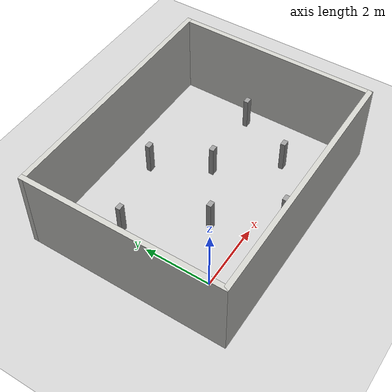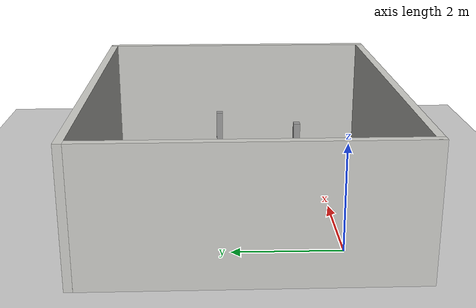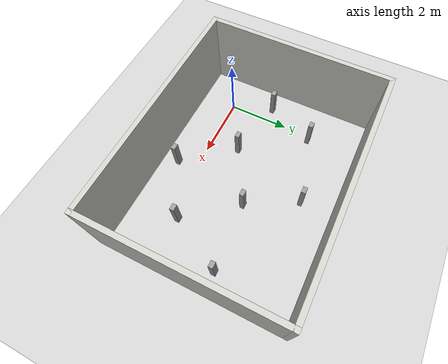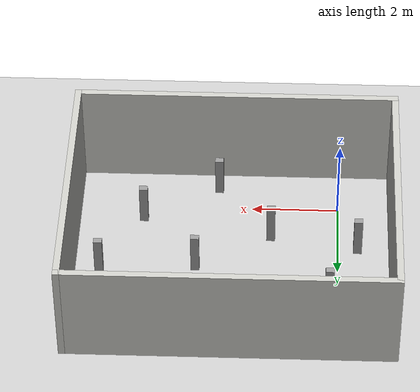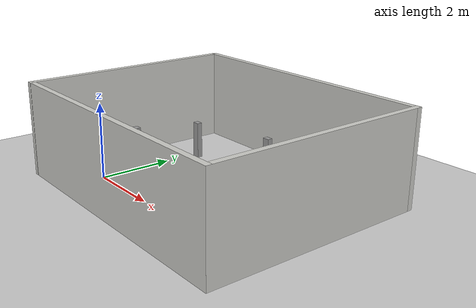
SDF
<sdf version="1.6">
 <world name="default">
  <light name="sun" type="directional">
   <pose>0 0 10 0 -0 0</pose>
   <diffuse>0.8 0.8 0.8 1</diffuse>
   <specular>0.2 0.2 0.2 1</specular>
   <attenuation>
    <range>1000</range>
    <constant>0.9</constant>
    <linear>0.01</linear>
    <quadratic>0.001</quadratic>
   </attenuation>
   <direction>-0.5 0.1 -0.9</direction>
  </light>
  <model name="ground_plane">
   <static>1</static>
   <link name="link">
    <collision name="collision">
     <geometry><plane><normal>0 0 1</normal><size>100 100</size></plane></geometry>
     <surface>
      <contact><collide_bitmask>65535</collide_bitmask></contact>
      <friction><ode><mu>100</mu><mu2>50</mu2></ode></friction>
     </surface>
    </collision>
    <visual name="visual">
     <cast_shadows>0</cast_shadows>
     <geometry><plane><normal>0 0 1</normal><size>100 100</size></plane></geometry>
     <material>
      <script><uri>file://media/materials/scripts/gazebo.material</uri><name>Gazebo/Grey</name></script>
     </material>
    </visual>
   </link>
  </model>
  <gravity>0 0 -9.8</gravity>
  <magnetic_field>6e-06 2.3e-05 -4.2e-05</magnetic_field>
  <atmosphere type="adiabatic"/>
  <physics name="default_physics" default="0" type="ode">
   <max_step_size>0.001</max_step_size>
   <real_time_factor>1</real_time_factor>
   <real_time_update_rate>1000</real_time_update_rate>
  </physics>
  <scene><ambient>0.4 0.4 0.4 1</ambient><background>0.7 0.7 0.7 1</background><shadows>1</shadows></scene>
  <spherical_coordinates>
   <surface_model>EARTH_WGS84</surface_model>
   <latitude_deg>0</latitude_deg>
   <longitude_deg>0</longitude_deg>
   <elevation>0</elevation>
   <heading_deg>0</heading_deg>
  </spherical_coordinates>
  <model name="house">
   <pose>2.42215 1.70527 0 0 -0 0</pose>
   <link name="Wall_0">
    <collision name="Wall_0_Collision">
     <geometry><box><size>6 0.15 2.5</size></box></geometry>
     <pose>0 0 1.25 0 -0 0</pose>
    </collision>
    <visual name="Wall_0_Visual">
     <pose>0 0 1.25 0 -0 0</pose>
     <geometry><box><size>6 0.15 2.5</size></box></geometry>
     <material>
      <script><uri>file://media/materials/scripts/gazebo.material</uri><name>Gazebo/CeilingTiled</name></script>
      <ambient>0.760784 0.662745 0.627451 1</ambient>
     </material>
     <meta><layer>0</layer></meta>
    </visual>
    <pose>-3.675 0 0 0 0 -1.5708</pose>
   </link>
   <link name="Wall_1">
    <collision name="Wall_1_Collision">
     <geometry><box><size>7.5 0.15 2.5</size></box></geometry>
     <pose>0 0 1.25 0 -0 0</pose>
    </collision>
    <visual name="Wall_1_Visual">
     <pose>0 0 1.25 0 -0 0</pose>
     <geometry><box><size>7.5 0.15 2.5</size></box></geometry>
     <material>
      <script><uri>file://media/materials/scripts/gazebo.material</uri><name>Gazebo/CeilingTiled</name></script>
      <ambient>0.996078 0.47451 0.0196078 1</ambient>
     </material>
     <meta><layer>0</layer></meta>
    </visual>
    <pose>0 -2.925 0 0 -0 0</pose>
   </link>
   <link name="Wall_2">
    <collision name="Wall_2_Collision">
     <geometry><box><size>6 0.15 2.5</size></box></geometry>
     <pose>0 0 1.25 0 -0 0</pose>
    </collision>
    <visual name="Wall_2_Visual">
     <pose>0 0 1.25 0 -0 0</pose>
     <geometry><box><size>6 0.15 2.5</size></box></geometry>
     <material>
      <script><uri>file://media/materials/scripts/gazebo.material</uri><name>Gazebo/CeilingTiled</name></script>
      <ambient>0.435294 0.796078 0.67451 1</ambient>
     </material>
     <meta><layer>0</layer></meta>
    </visual>
    <pose>3.675 0 0 0 -0 1.5708</pose>
   </link>
   <link name="Wall_3">
    <collision name="Wall_3_Collision">
     <geometry><box><size>7.5 0.15 2.5</size></box></geometry>
     <pose>0 0 1.25 0 -0 0</pose>
    </collision>
    <visual name="Wall_3_Visual">
     <pose>0 0 1.25 0 -0 0</pose>
     <geometry><box><size>7.5 0.15 2.5</size></box></geometry>
     <material>
      <script><uri>file://media/materials/scripts/gazebo.material</uri><name>Gazebo/CeilingTiled</name></script>
      <ambient>1 0.764706 0.305882 1</ambient>
     </material>
     <meta><layer>0</layer></meta>
    </visual>
    <pose>0 2.925 0 0 -0 3.14159</pose>
   </link>
   <static>1</static>
  </model>
  <model name="unit_box">
   <pose>1.55376 0.965848 0.5 0 -0 7.6e-05</pose>
   <link name="link">
    <inertial>
     <mass>1</mass>
     <inertia>
      <ixx>0.166667</ixx>
      <ixy>0</ixy>
      <ixz>0</ixz>
      <iyy>0.166667</iyy>
      <iyz>0</iyz>
      <izz>0.166667</izz>
     </inertia>
    </inertial>
    <collision name="collision"><geometry><box><size>0.197071 0.142039 1</size></box></geometry></collision>
    <visual name="visual">
     <geometry><box><size>0.197071 0.142039 1</size></box></geometry>
     <material>
      <script><name>Gazebo/Grey</name><uri>file://media/materials/scripts/gazebo.material</uri></script>
     </material>
    </visual>
   </link>
  </model>
  <model name="unit_box_clone">
   <pose>3.26865 1.97333 0.5 1e-06 3e-06 0.000106</pose>
   <link name="link">
    <inertial>
     <mass>1</mass>
     <inertia>
      <ixx>0.166667</ixx>
      <ixy>0</ixy>
      <ixz>0</ixz>
      <iyy>0.166667</iyy>
      <iyz>0</iyz>
      <izz>0.166667</izz>
     </inertia>
    </inertial>
    <collision name="collision"><geometry><box><size>0.197071 0.142039 1</size></box></geometry></collision>
    <visual name="visual">
     <geometry><box><size>0.197071 0.142039 1</size></box></geometry>
     <material>
      <script><name>Gazebo/Grey</name><uri>file://media/materials/scripts/gazebo.material</uri></script>
     </material>
    </visual>
   </link>
  </model>
  <model name="unit_box_clone_0">
   <pose>4.52711 0.399952 0.5 -1e-06 2e-06 1.7e-05</pose>
   <link name="link">
    <inertial>
     <mass>1</mass>
     <inertia>
      <ixx>0.166667</ixx>
      <ixy>0</ixy>
      <ixz>0</ixz>
      <iyy>0.166667</iyy>
      <iyz>0</iyz>
      <izz>0.166667</izz>
     </inertia>
    </inertial>
    <collision name="collision"><geometry><box><size>0.197071 0.142039 1</size></box></geometry></collision>
    <visual name="visual">
     <geometry><box><size>0.197071 0.142039 1</size></box></geometry>
     <material>
      <script><name>Gazebo/Grey</name><uri>file://media/materials/scripts/gazebo.material</uri></script>
     </material>
    </visual>
   </link>
  </model>
  <model name="unit_box_clone_1">
   <pose>0.198224 2.91333 0.5 0 0 -4.2e-05</pose>
   <link name="link">
    <inertial>
     <mass>1</mass>
     <inertia>
      <ixx>0.166667</ixx>
      <ixy>0</ixy>
      <ixz>0</ixz>
      <iyy>0.166667</iyy>
      <iyz>0</iyz>
      <izz>0.166667</izz>
     </inertia>
    </inertial>
    <collision name="collision"><geometry><box><size>0.197071 0.142039 1</size></box></geometry></collision>
    <visual name="visual">
     <geometry><box><size>0.197071 0.142039 1</size></box></geometry>
     <material>
      <script><name>Gazebo/Grey</name><uri>file://media/materials/scripts/gazebo.material</uri></script>
     </material>
    </visual>
   </link>
  </model>
  <model name="unit_box_clone_2">
   <pose>5.45725 2.14886 0.500001 -1e-06 7e-06 2.4e-05</pose>
   <link name="link">
    <inertial>
     <mass>1</mass>
     <inertia>
      <ixx>0.166667</ixx>
      <ixy>0</ixy>
      <ixz>0</ixz>
      <iyy>0.166667</iyy>
      <iyz>0</iyz>
      <izz>0.166667</izz>
     </inertia>
    </inertial>
    <collision name="collision"><geometry><box><size>0.197071 0.142039 1</size></box></geometry></collision>
    <visual name="visual">
     <geometry><box><size>0.197071 0.142039 1</size></box></geometry>
     <material>
      <script><name>Gazebo/Grey</name><uri>file://media/materials/scripts/gazebo.material</uri></script>
     </material>
    </visual>
   </link>
  </model>
  <model name="unit_box_clone_3">
   <pose>2.79727 -0.610479 0.5 -4e-06 0 8.2e-05</pose>
   <link name="link">
    <inertial>
     <mass>1</mass>
     <inertia>
      <ixx>0.166667</ixx>
      <ixy>0</ixy>
      <ixz>0</ixz>
      <iyy>0.166667</iyy>
      <iyz>0</iyz>
      <izz>0.166667</izz>
     </inertia>
    </inertial>
    <collision name="collision"><geometry><box><size>0.197071 0.142039 1</size></box></geometry></collision>
    <visual name="visual">
     <geometry><box><size>0.197071 0.142039 1</size></box></geometry>
     <material>
      <script><name>Gazebo/Grey</name><uri>file://media/materials/scripts/gazebo.material</uri></script>
     </material>
    </visual>
   </link>
  </model>
  <model name="unit_box_clone_4">
   <pose>2.41484 3.54721 0.500001 -5e-06 7e-06 -2.6e-05</pose>
   <link name="link">
    <inertial>
     <mass>1</mass>
     <inertia>
      <ixx>0.166667</ixx>
      <ixy>0</ixy>
      <ixz>0</ixz>
      <iyy>0.166667</iyy>
      <iyz>0</iyz>
      <izz>0.166667</izz>
     </inertia>
    </inertial>
    <collision name="collision"><geometry><box><size>0.197071 0.142039 1</size></box></geometry></collision>
    <visual name="visual">
     <geometry><box><size>0.197071 0.142039 1</size></box></geometry>
     <material>
      <script><name>Gazebo/Grey</name><uri>file://media/materials/scripts/gazebo.material</uri></script>
     </material>
    </visual>
   </link>
  </model>
  <model name="unit_box_clone_5">
   <pose>-0.454766 1.32459 0.5 -1e-06 -4e-06 -7e-06</pose>
   <link name="link">
    <inertial>
     <mass>1</mass>
     <inertia>
      <ixx>0.166667</ixx>
      <ixy>0</ixy>
      <ixz>0</ixz>
      <iyy>0.166667</iyy>
      <iyz>0</iyz>
      <izz>0.166667</izz>
     </inertia>
    </inertial>
    <collision name="collision"><geometry><box><size>0.197071 0.142039 1</size></box></geometry></collision>
    <visual name="visual">
     <geometry><box><size>0.197071 0.142039 1</size></box></geometry>
     <material>
      <script><name>Gazebo/Grey</name><uri>file://media/materials/scripts/gazebo.material</uri></script>
     </material>
    </visual>
   </link>
  </model>
 </world>
</sdf>
